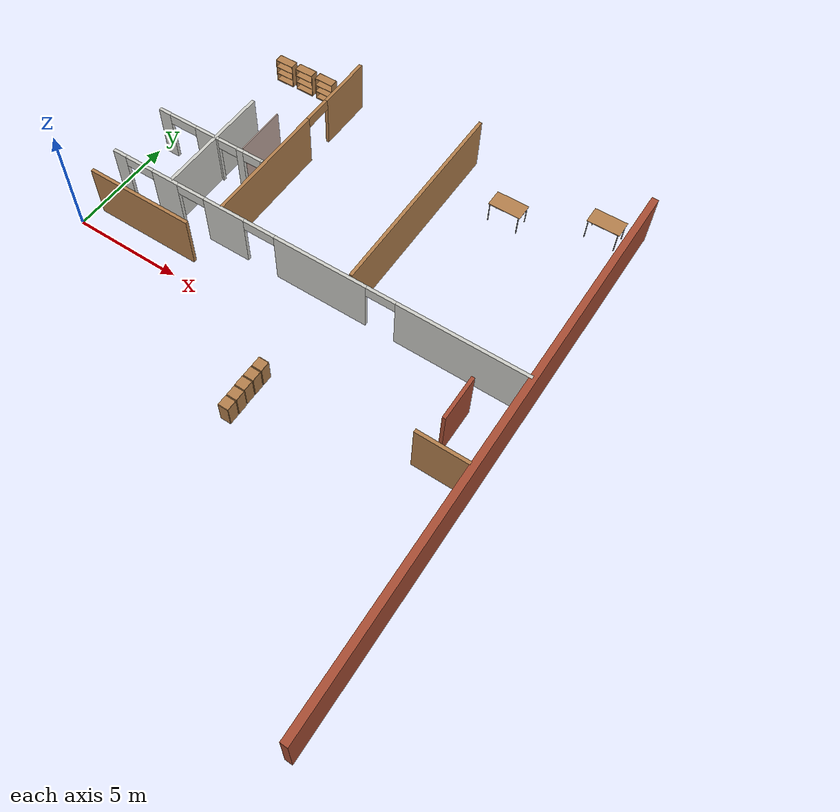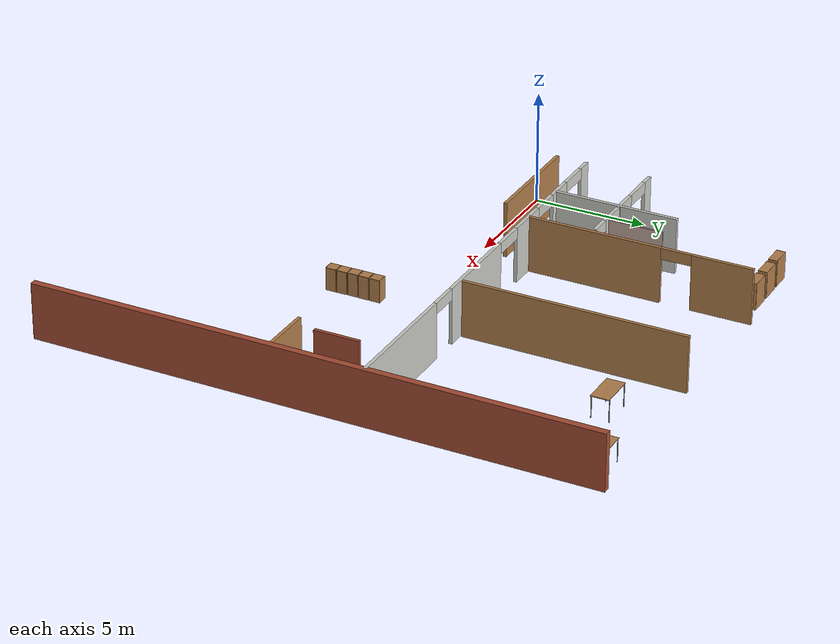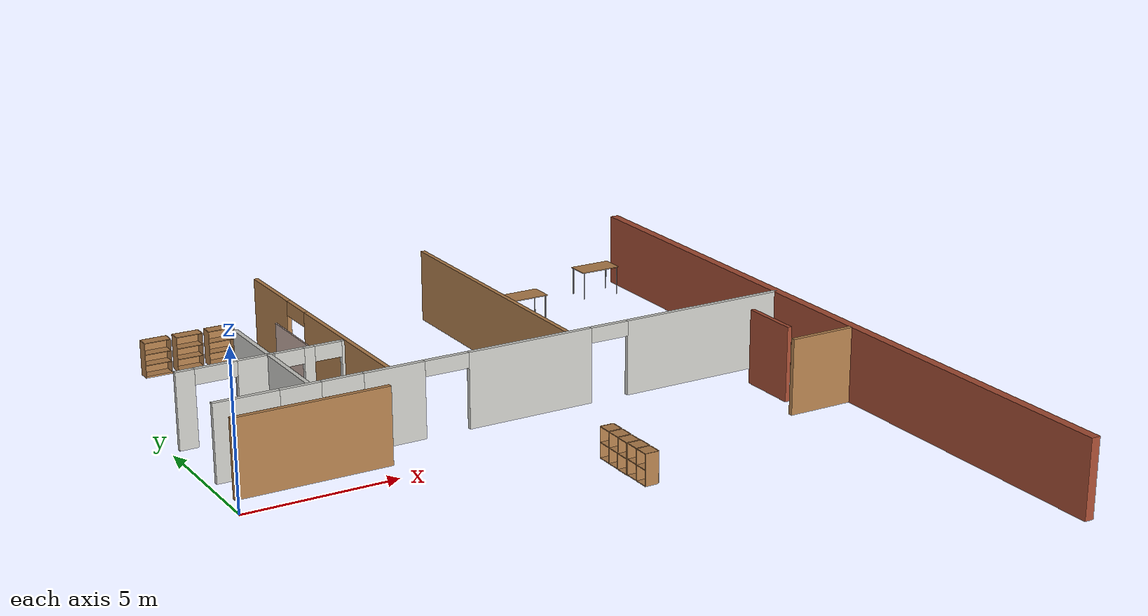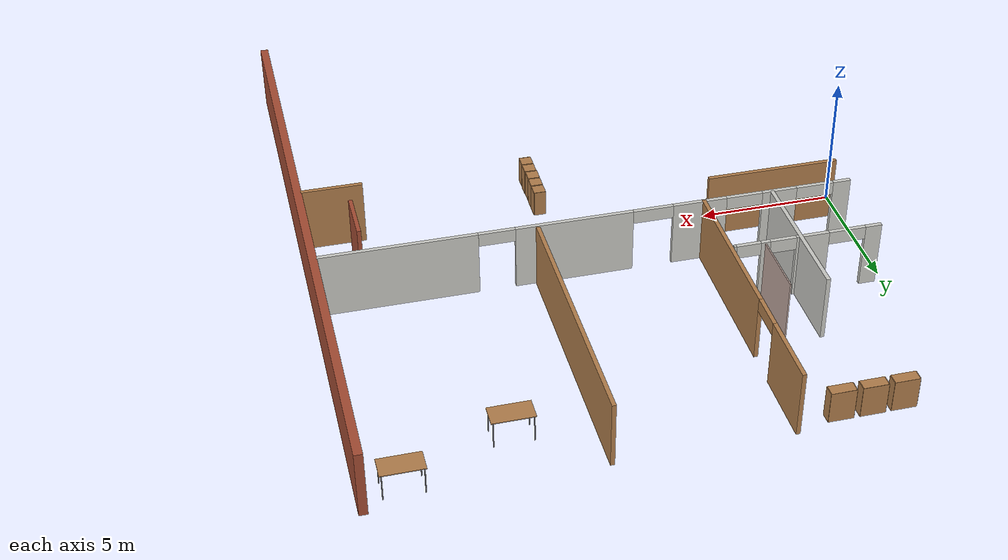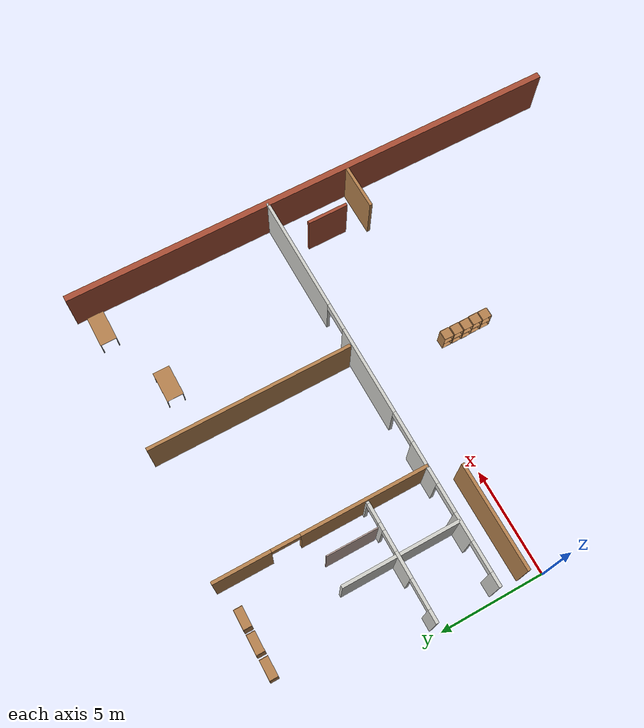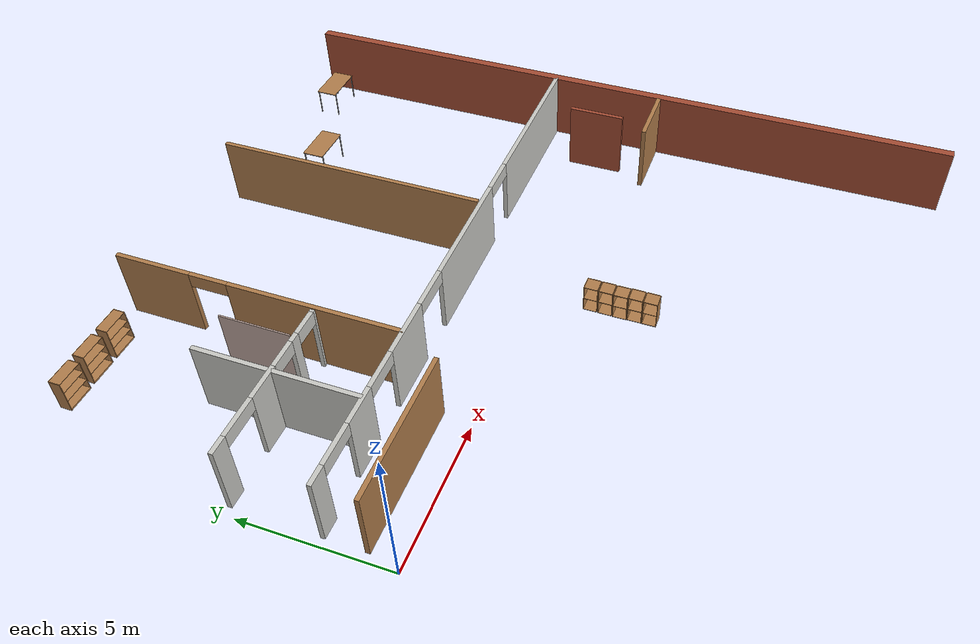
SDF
<sdf version="1.6">
 <world name="default">
  <model name="Building">
   <pose>-0.890597 0.014931 0 0 -0 0</pose>
   <link name="Wall_19">
    <collision name="Wall_19_Collision">
     <geometry><box><size>24.9915 0.3 2.5</size></box></geometry>
     <pose>0 0 1.25 0 -0 0</pose>
    </collision>
    <visual name="Wall_19_Visual">
     <pose>0 0 1.25 0 -0 0</pose>
     <geometry><box><size>24.9915 0.3 2.5</size></box></geometry>
     <material>
      <script><uri>file://media/materials/scripts/gazebo.material</uri><name>Gazebo/Bricks</name></script>
      <ambient>1 1 1 1</ambient>
     </material>
     <meta><layer>0</layer></meta>
    </visual>
    <pose>20.9406 0.012499 0 0 0 -1.57201</pose>
   </link>
   <link name="Wall_77">
    <pose>11.0476 2.39664 0 0 -0 0</pose>
    <visual name="Wall_77_Visual_0">
     <pose>-9.53901 0 1.25 0 -0 0</pose>
     <geometry><box><size>0.671981 0.15 2.5</size></box></geometry>
     <material>
      <script><uri>file://media/materials/scripts/gazebo.material</uri><name>Gazebo/CeilingTiled</name></script>
      <ambient>0.921569 0.807843 0.615686 1</ambient>
     </material>
     <meta><layer>0</layer></meta>
    </visual>
    <collision name="Wall_77_Collision_0">
     <geometry><box><size>0.671981 0.15 2.5</size></box></geometry>
     <pose>-9.53901 0 1.25 0 -0 0</pose>
    </collision>
    <visual name="Wall_77_Visual_1">
     <pose>-7.12805 0 1.25 0 -0 0</pose>
     <geometry><box><size>1.31821 0.15 2.5</size></box></geometry>
     <material>
      <script><uri>file://media/materials/scripts/gazebo.material</uri><name>Gazebo/CeilingTiled</name></script>
      <ambient>0.921569 0.807843 0.615686 1</ambient>
     </material>
     <meta><layer>0</layer></meta>
    </visual>
    <collision name="Wall_77_Collision_1">
     <geometry><box><size>1.31821 0.15 2.5</size></box></geometry>
     <pose>-7.12805 0 1.25 0 -0 0</pose>
    </collision>
    <visual name="Wall_77_Visual_2">
     <pose>-4.09575 0 1.25 0 -0 0</pose>
     <geometry><box><size>2.01783 0.15 2.5</size></box></geometry>
     <material>
      <script><uri>file://media/materials/scripts/gazebo.material</uri><name>Gazebo/CeilingTiled</name></script>
      <ambient>0.921569 0.807843 0.615686 1</ambient>
     </material>
     <meta><layer>0</layer></meta>
    </visual>
    <collision name="Wall_77_Collision_2">
     <geometry><box><size>2.01783 0.15 2.5</size></box></geometry>
     <pose>-4.09575 0 1.25 0 -0 0</pose>
    </collision>
    <visual name="Wall_77_Visual_3">
     <pose>0.576423 0 1.25 0 -0 0</pose>
     <geometry><box><size>4.33726 0.15 2.5</size></box></geometry>
     <material>
      <script><uri>file://media/materials/scripts/gazebo.material</uri><name>Gazebo/CeilingTiled</name></script>
      <ambient>0.921569 0.807843 0.615686 1</ambient>
     </material>
     <meta><layer>0</layer></meta>
    </visual>
    <collision name="Wall_77_Collision_3">
     <geometry><box><size>4.33726 0.15 2.5</size></box></geometry>
     <pose>0.576423 0 1.25 0 -0 0</pose>
    </collision>
    <visual name="Wall_77_Visual_4">
     <pose>6.97729 0 1.25 0 -0 0</pose>
     <geometry><box><size>5.79542 0.15 2.5</size></box></geometry>
     <material>
      <script><uri>file://media/materials/scripts/gazebo.material</uri><name>Gazebo/CeilingTiled</name></script>
      <ambient>0.921569 0.807843 0.615686 1</ambient>
     </material>
     <meta><layer>0</layer></meta>
    </visual>
    <collision name="Wall_77_Collision_4">
     <geometry><box><size>5.79542 0.15 2.5</size></box></geometry>
     <pose>6.97729 0 1.25 0 -0 0</pose>
    </collision>
    <visual name="Wall_77_Visual_5">
     <pose>-8.49509 0 2.25 0 -0 0</pose>
     <geometry><box><size>1.41586 0.15 0.5</size></box></geometry>
     <material>
      <script><uri>file://media/materials/scripts/gazebo.material</uri><name>Gazebo/CeilingTiled</name></script>
      <ambient>0.921569 0.807843 0.615686 1</ambient>
     </material>
     <meta><layer>0</layer></meta>
    </visual>
    <collision name="Wall_77_Collision_5">
     <geometry><box><size>1.41586 0.15 0.5</size></box></geometry>
     <pose>-8.49509 0 2.25 0 -0 0</pose>
    </collision>
    <visual name="Wall_77_Visual_6">
     <pose>-5.7868 0 2.25 0 -0 0</pose>
     <geometry><box><size>1.36428 0.15 0.5</size></box></geometry>
     <material>
      <script><uri>file://media/materials/scripts/gazebo.material</uri><name>Gazebo/CeilingTiled</name></script>
      <ambient>0.921569 0.807843 0.615686 1</ambient>
     </material>
     <meta><layer>0</layer></meta>
    </visual>
    <collision name="Wall_77_Collision_6">
     <geometry><box><size>1.36428 0.15 0.5</size></box></geometry>
     <pose>-5.7868 0 2.25 0 -0 0</pose>
    </collision>
    <visual name="Wall_77_Visual_7">
     <pose>-2.33952 0 2.25 0 -0 0</pose>
     <geometry><box><size>1.49462 0.15 0.5</size></box></geometry>
     <material>
      <script><uri>file://media/materials/scripts/gazebo.material</uri><name>Gazebo/CeilingTiled</name></script>
      <ambient>0.921569 0.807843 0.615686 1</ambient>
     </material>
     <meta><layer>0</layer></meta>
    </visual>
    <collision name="Wall_77_Collision_7">
     <geometry><box><size>1.49462 0.15 0.5</size></box></geometry>
     <pose>-2.33952 0 2.25 0 -0 0</pose>
    </collision>
    <visual name="Wall_77_Visual_8">
     <pose>3.41232 0 2.25 0 -0 0</pose>
     <geometry><box><size>1.33453 0.15 0.5</size></box></geometry>
     <material>
      <script><uri>file://media/materials/scripts/gazebo.material</uri><name>Gazebo/CeilingTiled</name></script>
      <ambient>0.921569 0.807843 0.615686 1</ambient>
     </material>
     <meta><layer>0</layer></meta>
    </visual>
    <collision name="Wall_77_Collision_8">
     <geometry><box><size>1.33453 0.15 0.5</size></box></geometry>
     <pose>3.41232 0 2.25 0 -0 0</pose>
    </collision>
   </link>
   <link name="Wall_80">
    <pose>6.79105 7.35843 0 0 0 -1.5708</pose>
    <visual name="Wall_80_Visual_0">
     <pose>-3.66248 0 1.25 0 -0 0</pose>
     <geometry><box><size>2.67504 0.15 2.5</size></box></geometry>
     <material>
      <script><uri>file://media/materials/scripts/gazebo.material</uri><name>Gazebo/Wood</name></script>
      <ambient>1 1 1 1</ambient>
     </material>
     <meta><layer>0</layer></meta>
    </visual>
    <collision name="Wall_80_Collision_0">
     <geometry><box><size>2.67504 0.15 2.5</size></box></geometry>
     <pose>-3.66248 0 1.25 0 -0 0</pose>
    </collision>
    <visual name="Wall_80_Visual_1">
     <pose>2.00479 0 1.25 0 -0 0</pose>
     <geometry><box><size>5.99042 0.15 2.5</size></box></geometry>
     <material>
      <script><uri>file://media/materials/scripts/gazebo.material</uri><name>Gazebo/Wood</name></script>
      <ambient>1 1 1 1</ambient>
     </material>
     <meta><layer>0</layer></meta>
    </visual>
    <collision name="Wall_80_Collision_1">
     <geometry><box><size>5.99042 0.15 2.5</size></box></geometry>
     <pose>2.00479 0 1.25 0 -0 0</pose>
    </collision>
    <visual name="Wall_80_Visual_2">
     <pose>-1.65769 0 2.25 0 -0 0</pose>
     <geometry><box><size>1.33453 0.15 0.5</size></box></geometry>
     <material>
      <script><uri>file://media/materials/scripts/gazebo.material</uri><name>Gazebo/Wood</name></script>
      <ambient>1 1 1 1</ambient>
     </material>
     <meta><layer>0</layer></meta>
    </visual>
    <collision name="Wall_80_Collision_2">
     <geometry><box><size>1.33453 0.15 0.5</size></box></geometry>
     <pose>-1.65769 0 2.25 0 -0 0</pose>
    </collision>
   </link>
   <link name="Wall_84">
    <collision name="Wall_84_Collision">
     <geometry><box><size>5.5 0.15 2.5</size></box></geometry>
     <pose>0 0 1.25 0 -0 0</pose>
    </collision>
    <visual name="Wall_84_Visual">
     <pose>0 0 1.25 0 -0 0</pose>
     <geometry><box><size>5.5 0.15 2.5</size></box></geometry>
     <material>
      <script><uri>file://media/materials/scripts/gazebo.material</uri><name>Gazebo/CeilingTiled</name></script>
      <ambient>1 1 1 1</ambient>
     </material>
     <meta><layer>0</layer></meta>
    </visual>
    <pose>4.2046 5.15734 0 0 0 -1.5708</pose>
   </link>
   <link name="Wall_86">
    <pose>3.93226 5.30604 0 0 -0 0</pose>
    <visual name="Wall_86_Visual_0">
     <pose>-2.44464 0 1.25 0 -0 0</pose>
     <geometry><box><size>0.610725 0.15 2.5</size></box></geometry>
     <material>
      <script><uri>file://media/materials/scripts/gazebo.material</uri><name>Gazebo/CeilingTiled</name></script>
      <ambient>1 1 1 1</ambient>
     </material>
     <meta><layer>0</layer></meta>
    </visual>
    <collision name="Wall_86_Collision_0">
     <geometry><box><size>0.610725 0.15 2.5</size></box></geometry>
     <pose>-2.44464 0 1.25 0 -0 0</pose>
    </collision>
    <visual name="Wall_86_Visual_1">
     <pose>-0.167477 0 1.25 0 -0 0</pose>
     <geometry><box><size>1.21504 0.15 2.5</size></box></geometry>
     <material>
      <script><uri>file://media/materials/scripts/gazebo.material</uri><name>Gazebo/CeilingTiled</name></script>
      <ambient>1 1 1 1</ambient>
     </material>
     <meta><layer>0</layer></meta>
    </visual>
    <collision name="Wall_86_Collision_1">
     <geometry><box><size>1.21504 0.15 2.5</size></box></geometry>
     <pose>-0.167477 0 1.25 0 -0 0</pose>
    </collision>
    <visual name="Wall_86_Visual_2">
     <pose>1.58216 0 1.25 0 -0 0</pose>
     <geometry><box><size>0.34667 0.15 2.5</size></box></geometry>
     <material>
      <script><uri>file://media/materials/scripts/gazebo.material</uri><name>Gazebo/CeilingTiled</name></script>
      <ambient>1 1 1 1</ambient>
     </material>
     <meta><layer>0</layer></meta>
    </visual>
    <collision name="Wall_86_Collision_2">
     <geometry><box><size>0.34667 0.15 2.5</size></box></geometry>
     <pose>1.58216 0 1.25 0 -0 0</pose>
    </collision>
    <visual name="Wall_86_Visual_3">
     <pose>2.70275 0 1.25 0 -0 0</pose>
     <geometry><box><size>0.094504 0.15 2.5</size></box></geometry>
     <material>
      <script><uri>file://media/materials/scripts/gazebo.material</uri><name>Gazebo/CeilingTiled</name></script>
      <ambient>1 1 1 1</ambient>
     </material>
     <meta><layer>0</layer></meta>
    </visual>
    <collision name="Wall_86_Collision_3">
     <geometry><box><size>0.094504 0.15 2.5</size></box></geometry>
     <pose>2.70275 0 1.25 0 -0 0</pose>
    </collision>
    <visual name="Wall_86_Visual_4">
     <pose>-1.45714 0 2.25 0 -0 0</pose>
     <geometry><box><size>1.36428 0.15 0.5</size></box></geometry>
     <material>
      <script><uri>file://media/materials/scripts/gazebo.material</uri><name>Gazebo/CeilingTiled</name></script>
      <ambient>1 1 1 1</ambient>
     </material>
     <meta><layer>0</layer></meta>
    </visual>
    <collision name="Wall_86_Collision_4">
     <geometry><box><size>1.36428 0.15 0.5</size></box></geometry>
     <pose>-1.45714 0 2.25 0 -0 0</pose>
    </collision>
    <visual name="Wall_86_Visual_5">
     <pose>0.924435 0 2.25 0 -0 0</pose>
     <geometry><box><size>0.968782 0.15 0.5</size></box></geometry>
     <material>
      <script><uri>file://media/materials/scripts/gazebo.material</uri><name>Gazebo/CeilingTiled</name></script>
      <ambient>1 1 1 1</ambient>
     </material>
     <meta><layer>0</layer></meta>
    </visual>
    <collision name="Wall_86_Collision_5">
     <geometry><box><size>0.968782 0.15 0.5</size></box></geometry>
     <pose>0.924435 0 2.25 0 -0 0</pose>
    </collision>
    <visual name="Wall_86_Visual_6">
     <pose>2.2055 0 2.25 0 -0 0</pose>
     <geometry><box><size>0.9 0.15 0.5</size></box></geometry>
     <material>
      <script><uri>file://media/materials/scripts/gazebo.material</uri><name>Gazebo/CeilingTiled</name></script>
      <ambient>1 1 1 1</ambient>
     </material>
     <meta><layer>0</layer></meta>
    </visual>
    <collision name="Wall_86_Collision_6">
     <geometry><box><size>0.9 0.15 0.5</size></box></geometry>
     <pose>2.2055 0 2.25 0 -0 0</pose>
    </collision>
   </link>
   <link name="Wall_89">
    <collision name="Wall_89_Collision">
     <geometry><box><size>5 0.15 2.5</size></box></geometry>
     <pose>0 0 1.25 0 -0 0</pose>
    </collision>
    <visual name="Wall_89_Visual">
     <pose>0 0 1.25 0 -0 0</pose>
     <geometry><box><size>5 0.15 2.5</size></box></geometry>
     <material>
      <script><uri>file://media/materials/scripts/gazebo.material</uri><name>Gazebo/Wood</name></script>
      <ambient>1 1 1 1</ambient>
     </material>
     <meta><layer>0</layer></meta>
    </visual>
    <pose>3.67259 1.04664 0 0 -0 0</pose>
   </link>
   <link name="Wall_91">
    <collision name="Wall_91_Collision">
     <geometry><box><size>2.25 0.15 2.5</size></box></geometry>
     <pose>0 0 1.25 0 -0 0</pose>
    </collision>
    <visual name="Wall_91_Visual">
     <pose>0 0 1.25 0 -0 0</pose>
     <geometry><box><size>2.25 0.15 2.5</size></box></geometry>
     <material>
      <script><uri>file://media/materials/scripts/gazebo.material</uri><name>Gazebo/Wood</name></script>
      <ambient>1 1 1 1</ambient>
     </material>
     <meta><layer>0</layer></meta>
    </visual>
    <pose>19.6906 -1.7315 0 0 -0 0</pose>
   </link>
   <link name="Wall_93">
    <collision name="Wall_93_Collision">
     <geometry><box><size>2 0.15 2.5</size></box></geometry>
     <pose>0 0 1.25 0 -0 0</pose>
    </collision>
    <visual name="Wall_93_Visual">
     <pose>0 0 1.25 0 -0 0</pose>
     <geometry><box><size>2 0.15 2.5</size></box></geometry>
     <material>
      <script><uri>file://media/materials/scripts/gazebo.material</uri><name>Gazebo/Bricks</name></script>
      <ambient>1 1 1 1</ambient>
     </material>
     <meta><layer>0</layer></meta>
    </visual>
    <pose>19.1519 0.230697 0 0 0 -1.5708</pose>
   </link>
   <link name="Wall_95">
    <collision name="Wall_95_Collision">
     <geometry><box><size>9.75 0.15 2.5</size></box></geometry>
     <pose>0 0 1.25 0 -0 0</pose>
    </collision>
    <visual name="Wall_95_Visual">
     <pose>0 0 1.25 0 -0 0</pose>
     <geometry><box><size>9.75 0.15 2.5</size></box></geometry>
     <material>
      <script><uri>file://media/materials/scripts/gazebo.material</uri><name>Gazebo/Wood</name></script>
      <ambient>1 1 1 1</ambient>
     </material>
     <meta><layer>0</layer></meta>
    </visual>
    <pose>12.9865 7.39321 0 0 0 -1.5708</pose>
   </link>
   <link name="Wall_97">
    <collision name="Wall_97_Collision">
     <geometry><box><size>2.39986 0.05 2.5</size></box></geometry>
     <pose>0 0 1.25 0 -0 0</pose>
    </collision>
    <visual name="Wall_97_Visual">
     <pose>0 0 1.25 0 -0 0</pose>
     <geometry><box><size>2.39986 0.05 2.5</size></box></geometry>
     <material>
      <script><uri>file://media/materials/scripts/gazebo.material</uri><name>Gazebo/Grey</name></script>
      <ambient>0.760784 0.662745 0.627451 1</ambient>
     </material>
     <meta><layer>0</layer></meta>
    </visual>
    <pose>5.54862 6.64876 0 0 0 -1.5708</pose>
   </link>
   <static>1</static>
  </model>
  <model name="cabinet_0_clone_clone_clone_clone_clone_clone_clone_clone">
   <static>1</static>
   <link name="cabinet_bottom_plate">
    <inertial>
     <pose>0 0 -1 0 -0 0</pose>
     <inertia><ixx>2.05</ixx><ixy>0</ixy><ixz>0</ixz><iyy>2.05</iyy><iyz>0</iyz><izz>2.05</izz></inertia>
     <mass>25</mass>
    </inertial>
    <collision name="cabinet_bottom_plate_geom">
     <pose>0 0 0.01 0 -0 0</pose>
     <geometry><box><size>0.45 0.45 0.02</size></box></geometry>
    </collision>
    <visual name="cabinet_bottom_plate_geom_visual">
     <pose>0 0 0.01 0 -0 0</pose>
     <geometry><box><size>0.45 0.45 0.02</size></box></geometry>
     <material>
      <script><uri>file://media/materials/scripts/gazebo.material</uri><name>Gazebo/Wood</name></script>
     </material>
    </visual>
    <collision name="cabinet_bottom_plate_geom_cabinet_back_plate">
     <pose>0.235 0 0.51 0 -0 0</pose>
     <geometry><box><size>0.02 0.45 1.02</size></box></geometry>
    </collision>
    <visual name="cabinet_bottom_plate_geom_cabinet_back_plate_visual">
     <pose>0.235 0 0.51 0 -0 0</pose>
     <geometry><box><size>0.02 0.45 1.02</size></box></geometry>
     <material>
      <script><uri>file://media/materials/scripts/gazebo.material</uri><name>Gazebo/Wood</name></script>
     </material>
    </visual>
    <collision name="cabinet_bottom_plate_geom_cabinet_left_plate">
     <pose>0 0.235 0.51 0 -0 0</pose>
     <geometry><box><size>0.45 0.02 1.02</size></box></geometry>
    </collision>
    <visual name="cabinet_bottom_plate_geom_cabinet_left_plate_visual">
     <pose>0 0.235 0.51 0 -0 0</pose>
     <geometry><box><size>0.45 0.02 1.02</size></box></geometry>
     <material>
      <script><uri>file://media/materials/scripts/gazebo.material</uri><name>Gazebo/Wood</name></script>
     </material>
    </visual>
    <collision name="cabinet_bottom_plate_geom_cabinet_middle_plate">
     <pose>0 0 0.51 0 -0 0</pose>
     <geometry><box><size>0.45 0.45 0.02</size></box></geometry>
    </collision>
    <visual name="cabinet_bottom_plate_geom_cabinet_middle_plate_visual">
     <pose>0 0 0.51 0 -0 0</pose>
     <geometry><box><size>0.45 0.45 0.02</size></box></geometry>
     <material>
      <script><uri>file://media/materials/scripts/gazebo.material</uri><name>Gazebo/Wood</name></script>
     </material>
    </visual>
    <collision name="cabinet_bottom_plate_geom_cabinet_right_plate">
     <pose>0 -0.235 0.51 0 -0 0</pose>
     <geometry><box><size>0.45 0.02 1.02</size></box></geometry>
    </collision>
    <visual name="cabinet_bottom_plate_geom_cabinet_right_plate_visual">
     <pose>0 -0.235 0.51 0 -0 0</pose>
     <geometry><box><size>0.45 0.02 1.02</size></box></geometry>
     <material>
      <script><uri>file://media/materials/scripts/gazebo.material</uri><name>Gazebo/Wood</name></script>
     </material>
    </visual>
    <collision name="cabinet_bottom_plate_geom_cabinet_top_plate">
     <pose>0 0 1.01 0 -0 0</pose>
     <geometry><box><size>0.45 0.45 0.02</size></box></geometry>
    </collision>
    <visual name="cabinet_bottom_plate_geom_cabinet_top_plate_visual">
     <pose>0 0 1.01 0 -0 0</pose>
     <geometry><box><size>0.45 0.45 0.02</size></box></geometry>
     <material>
      <script><uri>file://media/materials/scripts/gazebo.material</uri><name>Gazebo/Wood</name></script>
     </material>
    </visual>
   </link>
   <pose>10.9895 -3.90962 0 0 -0 0</pose>
  </model>
  <model name="cabinet_0_clone_clone_clone_clone_clone_clone_clone_clone_clone">
   <static>1</static>
   <link name="cabinet_bottom_plate">
    <inertial>
     <pose>0 0 -1 0 -0 0</pose>
     <inertia><ixx>2.05</ixx><ixy>0</ixy><ixz>0</ixz><iyy>2.05</iyy><iyz>0</iyz><izz>2.05</izz></inertia>
     <mass>25</mass>
    </inertial>
    <collision name="cabinet_bottom_plate_geom">
     <pose>0 0 0.01 0 -0 0</pose>
     <geometry><box><size>0.45 0.45 0.02</size></box></geometry>
    </collision>
    <visual name="cabinet_bottom_plate_geom_visual">
     <pose>0 0 0.01 0 -0 0</pose>
     <geometry><box><size>0.45 0.45 0.02</size></box></geometry>
     <material>
      <script><uri>file://media/materials/scripts/gazebo.material</uri><name>Gazebo/Wood</name></script>
     </material>
    </visual>
    <collision name="cabinet_bottom_plate_geom_cabinet_back_plate">
     <pose>0.235 0 0.51 0 -0 0</pose>
     <geometry><box><size>0.02 0.45 1.02</size></box></geometry>
    </collision>
    <visual name="cabinet_bottom_plate_geom_cabinet_back_plate_visual">
     <pose>0.235 0 0.51 0 -0 0</pose>
     <geometry><box><size>0.02 0.45 1.02</size></box></geometry>
     <material>
      <script><uri>file://media/materials/scripts/gazebo.material</uri><name>Gazebo/Wood</name></script>
     </material>
    </visual>
    <collision name="cabinet_bottom_plate_geom_cabinet_left_plate">
     <pose>0 0.235 0.51 0 -0 0</pose>
     <geometry><box><size>0.45 0.02 1.02</size></box></geometry>
    </collision>
    <visual name="cabinet_bottom_plate_geom_cabinet_left_plate_visual">
     <pose>0 0.235 0.51 0 -0 0</pose>
     <geometry><box><size>0.45 0.02 1.02</size></box></geometry>
     <material>
      <script><uri>file://media/materials/scripts/gazebo.material</uri><name>Gazebo/Wood</name></script>
     </material>
    </visual>
    <collision name="cabinet_bottom_plate_geom_cabinet_middle_plate">
     <pose>0 0 0.51 0 -0 0</pose>
     <geometry><box><size>0.45 0.45 0.02</size></box></geometry>
    </collision>
    <visual name="cabinet_bottom_plate_geom_cabinet_middle_plate_visual">
     <pose>0 0 0.51 0 -0 0</pose>
     <geometry><box><size>0.45 0.45 0.02</size></box></geometry>
     <material>
      <script><uri>file://media/materials/scripts/gazebo.material</uri><name>Gazebo/Wood</name></script>
     </material>
    </visual>
    <collision name="cabinet_bottom_plate_geom_cabinet_right_plate">
     <pose>0 -0.235 0.51 0 -0 0</pose>
     <geometry><box><size>0.45 0.02 1.02</size></box></geometry>
    </collision>
    <visual name="cabinet_bottom_plate_geom_cabinet_right_plate_visual">
     <pose>0 -0.235 0.51 0 -0 0</pose>
     <geometry><box><size>0.45 0.02 1.02</size></box></geometry>
     <material>
      <script><uri>file://media/materials/scripts/gazebo.material</uri><name>Gazebo/Wood</name></script>
     </material>
    </visual>
    <collision name="cabinet_bottom_plate_geom_cabinet_top_plate">
     <pose>0 0 1.01 0 -0 0</pose>
     <geometry><box><size>0.45 0.45 0.02</size></box></geometry>
    </collision>
    <visual name="cabinet_bottom_plate_geom_cabinet_top_plate_visual">
     <pose>0 0 1.01 0 -0 0</pose>
     <geometry><box><size>0.45 0.45 0.02</size></box></geometry>
     <material>
      <script><uri>file://media/materials/scripts/gazebo.material</uri><name>Gazebo/Wood</name></script>
     </material>
    </visual>
   </link>
   <pose>10.9941 -3.40797 0 0 -0 0</pose>
  </model>
  <model name="cabinet_0_clone_clone_clone_clone_clone_clone_clone_clone_clone_clone">
   <static>1</static>
   <link name="cabinet_bottom_plate">
    <inertial>
     <pose>0 0 -1 0 -0 0</pose>
     <inertia><ixx>2.05</ixx><ixy>0</ixy><ixz>0</ixz><iyy>2.05</iyy><iyz>0</iyz><izz>2.05</izz></inertia>
     <mass>25</mass>
    </inertial>
    <collision name="cabinet_bottom_plate_geom">
     <pose>0 0 0.01 0 -0 0</pose>
     <geometry><box><size>0.45 0.45 0.02</size></box></geometry>
    </collision>
    <visual name="cabinet_bottom_plate_geom_visual">
     <pose>0 0 0.01 0 -0 0</pose>
     <geometry><box><size>0.45 0.45 0.02</size></box></geometry>
     <material>
      <script><uri>file://media/materials/scripts/gazebo.material</uri><name>Gazebo/Wood</name></script>
     </material>
    </visual>
    <collision name="cabinet_bottom_plate_geom_cabinet_back_plate">
     <pose>0.235 0 0.51 0 -0 0</pose>
     <geometry><box><size>0.02 0.45 1.02</size></box></geometry>
    </collision>
    <visual name="cabinet_bottom_plate_geom_cabinet_back_plate_visual">
     <pose>0.235 0 0.51 0 -0 0</pose>
     <geometry><box><size>0.02 0.45 1.02</size></box></geometry>
     <material>
      <script><uri>file://media/materials/scripts/gazebo.material</uri><name>Gazebo/Wood</name></script>
     </material>
    </visual>
    <collision name="cabinet_bottom_plate_geom_cabinet_left_plate">
     <pose>0 0.235 0.51 0 -0 0</pose>
     <geometry><box><size>0.45 0.02 1.02</size></box></geometry>
    </collision>
    <visual name="cabinet_bottom_plate_geom_cabinet_left_plate_visual">
     <pose>0 0.235 0.51 0 -0 0</pose>
     <geometry><box><size>0.45 0.02 1.02</size></box></geometry>
     <material>
      <script><uri>file://media/materials/scripts/gazebo.material</uri><name>Gazebo/Wood</name></script>
     </material>
    </visual>
    <collision name="cabinet_bottom_plate_geom_cabinet_middle_plate">
     <pose>0 0 0.51 0 -0 0</pose>
     <geometry><box><size>0.45 0.45 0.02</size></box></geometry>
    </collision>
    <visual name="cabinet_bottom_plate_geom_cabinet_middle_plate_visual">
     <pose>0 0 0.51 0 -0 0</pose>
     <geometry><box><size>0.45 0.45 0.02</size></box></geometry>
     <material>
      <script><uri>file://media/materials/scripts/gazebo.material</uri><name>Gazebo/Wood</name></script>
     </material>
    </visual>
    <collision name="cabinet_bottom_plate_geom_cabinet_right_plate">
     <pose>0 -0.235 0.51 0 -0 0</pose>
     <geometry><box><size>0.45 0.02 1.02</size></box></geometry>
    </collision>
    <visual name="cabinet_bottom_plate_geom_cabinet_right_plate_visual">
     <pose>0 -0.235 0.51 0 -0 0</pose>
     <geometry><box><size>0.45 0.02 1.02</size></box></geometry>
     <material>
      <script><uri>file://media/materials/scripts/gazebo.material</uri><name>Gazebo/Wood</name></script>
     </material>
    </visual>
    <collision name="cabinet_bottom_plate_geom_cabinet_top_plate">
     <pose>0 0 1.01 0 -0 0</pose>
     <geometry><box><size>0.45 0.45 0.02</size></box></geometry>
    </collision>
    <visual name="cabinet_bottom_plate_geom_cabinet_top_plate_visual">
     <pose>0 0 1.01 0 -0 0</pose>
     <geometry><box><size>0.45 0.45 0.02</size></box></geometry>
     <material>
      <script><uri>file://media/materials/scripts/gazebo.material</uri><name>Gazebo/Wood</name></script>
     </material>
    </visual>
   </link>
   <pose>10.9779 -2.90765 0 0 -0 0</pose>
  </model>
  <model name="cabinet_0_clone_clone_clone_clone_clone_clone_clone_clone_clone_clone_clone">
   <static>1</static>
   <link name="cabinet_bottom_plate">
    <inertial>
     <pose>0 0 -1 0 -0 0</pose>
     <inertia><ixx>2.05</ixx><ixy>0</ixy><ixz>0</ixz><iyy>2.05</iyy><iyz>0</iyz><izz>2.05</izz></inertia>
     <mass>25</mass>
    </inertial>
    <collision name="cabinet_bottom_plate_geom">
     <pose>0 0 0.01 0 -0 0</pose>
     <geometry><box><size>0.45 0.45 0.02</size></box></geometry>
    </collision>
    <visual name="cabinet_bottom_plate_geom_visual">
     <pose>0 0 0.01 0 -0 0</pose>
     <geometry><box><size>0.45 0.45 0.02</size></box></geometry>
     <material>
      <script><uri>file://media/materials/scripts/gazebo.material</uri><name>Gazebo/Wood</name></script>
     </material>
    </visual>
    <collision name="cabinet_bottom_plate_geom_cabinet_back_plate">
     <pose>0.235 0 0.51 0 -0 0</pose>
     <geometry><box><size>0.02 0.45 1.02</size></box></geometry>
    </collision>
    <visual name="cabinet_bottom_plate_geom_cabinet_back_plate_visual">
     <pose>0.235 0 0.51 0 -0 0</pose>
     <geometry><box><size>0.02 0.45 1.02</size></box></geometry>
     <material>
      <script><uri>file://media/materials/scripts/gazebo.material</uri><name>Gazebo/Wood</name></script>
     </material>
    </visual>
    <collision name="cabinet_bottom_plate_geom_cabinet_left_plate">
     <pose>0 0.235 0.51 0 -0 0</pose>
     <geometry><box><size>0.45 0.02 1.02</size></box></geometry>
    </collision>
    <visual name="cabinet_bottom_plate_geom_cabinet_left_plate_visual">
     <pose>0 0.235 0.51 0 -0 0</pose>
     <geometry><box><size>0.45 0.02 1.02</size></box></geometry>
     <material>
      <script><uri>file://media/materials/scripts/gazebo.material</uri><name>Gazebo/Wood</name></script>
     </material>
    </visual>
    <collision name="cabinet_bottom_plate_geom_cabinet_middle_plate">
     <pose>0 0 0.51 0 -0 0</pose>
     <geometry><box><size>0.45 0.45 0.02</size></box></geometry>
    </collision>
    <visual name="cabinet_bottom_plate_geom_cabinet_middle_plate_visual">
     <pose>0 0 0.51 0 -0 0</pose>
     <geometry><box><size>0.45 0.45 0.02</size></box></geometry>
     <material>
      <script><uri>file://media/materials/scripts/gazebo.material</uri><name>Gazebo/Wood</name></script>
     </material>
    </visual>
    <collision name="cabinet_bottom_plate_geom_cabinet_right_plate">
     <pose>0 -0.235 0.51 0 -0 0</pose>
     <geometry><box><size>0.45 0.02 1.02</size></box></geometry>
    </collision>
    <visual name="cabinet_bottom_plate_geom_cabinet_right_plate_visual">
     <pose>0 -0.235 0.51 0 -0 0</pose>
     <geometry><box><size>0.45 0.02 1.02</size></box></geometry>
     <material>
      <script><uri>file://media/materials/scripts/gazebo.material</uri><name>Gazebo/Wood</name></script>
     </material>
    </visual>
    <collision name="cabinet_bottom_plate_geom_cabinet_top_plate">
     <pose>0 0 1.01 0 -0 0</pose>
     <geometry><box><size>0.45 0.45 0.02</size></box></geometry>
    </collision>
    <visual name="cabinet_bottom_plate_geom_cabinet_top_plate_visual">
     <pose>0 0 1.01 0 -0 0</pose>
     <geometry><box><size>0.45 0.45 0.02</size></box></geometry>
     <material>
      <script><uri>file://media/materials/scripts/gazebo.material</uri><name>Gazebo/Wood</name></script>
     </material>
    </visual>
   </link>
   <pose>10.9873 -2.40459 0 0 -0 0</pose>
  </model>
  <model name="cabinet_0_clone_clone_clone_clone_clone_clone_clone_clone_clone_clone_clone_clone">
   <static>1</static>
   <link name="cabinet_bottom_plate">
    <inertial>
     <pose>0 0 -1 0 -0 0</pose>
     <inertia><ixx>2.05</ixx><ixy>0</ixy><ixz>0</ixz><iyy>2.05</iyy><iyz>0</iyz><izz>2.05</izz></inertia>
     <mass>25</mass>
    </inertial>
    <collision name="cabinet_bottom_plate_geom">
     <pose>0 0 0.01 0 -0 0</pose>
     <geometry><box><size>0.45 0.45 0.02</size></box></geometry>
    </collision>
    <visual name="cabinet_bottom_plate_geom_visual">
     <pose>0 0 0.01 0 -0 0</pose>
     <geometry><box><size>0.45 0.45 0.02</size></box></geometry>
     <material>
      <script><uri>file://media/materials/scripts/gazebo.material</uri><name>Gazebo/Wood</name></script>
     </material>
    </visual>
    <collision name="cabinet_bottom_plate_geom_cabinet_back_plate">
     <pose>0.235 0 0.51 0 -0 0</pose>
     <geometry><box><size>0.02 0.45 1.02</size></box></geometry>
    </collision>
    <visual name="cabinet_bottom_plate_geom_cabinet_back_plate_visual">
     <pose>0.235 0 0.51 0 -0 0</pose>
     <geometry><box><size>0.02 0.45 1.02</size></box></geometry>
     <material>
      <script><uri>file://media/materials/scripts/gazebo.material</uri><name>Gazebo/Wood</name></script>
     </material>
    </visual>
    <collision name="cabinet_bottom_plate_geom_cabinet_left_plate">
     <pose>0 0.235 0.51 0 -0 0</pose>
     <geometry><box><size>0.45 0.02 1.02</size></box></geometry>
    </collision>
    <visual name="cabinet_bottom_plate_geom_cabinet_left_plate_visual">
     <pose>0 0.235 0.51 0 -0 0</pose>
     <geometry><box><size>0.45 0.02 1.02</size></box></geometry>
     <material>
      <script><uri>file://media/materials/scripts/gazebo.material</uri><name>Gazebo/Wood</name></script>
     </material>
    </visual>
    <collision name="cabinet_bottom_plate_geom_cabinet_middle_plate">
     <pose>0 0 0.51 0 -0 0</pose>
     <geometry><box><size>0.45 0.45 0.02</size></box></geometry>
    </collision>
    <visual name="cabinet_bottom_plate_geom_cabinet_middle_plate_visual">
     <pose>0 0 0.51 0 -0 0</pose>
     <geometry><box><size>0.45 0.45 0.02</size></box></geometry>
     <material>
      <script><uri>file://media/materials/scripts/gazebo.material</uri><name>Gazebo/Wood</name></script>
     </material>
    </visual>
    <collision name="cabinet_bottom_plate_geom_cabinet_right_plate">
     <pose>0 -0.235 0.51 0 -0 0</pose>
     <geometry><box><size>0.45 0.02 1.02</size></box></geometry>
    </collision>
    <visual name="cabinet_bottom_plate_geom_cabinet_right_plate_visual">
     <pose>0 -0.235 0.51 0 -0 0</pose>
     <geometry><box><size>0.45 0.02 1.02</size></box></geometry>
     <material>
      <script><uri>file://media/materials/scripts/gazebo.material</uri><name>Gazebo/Wood</name></script>
     </material>
    </visual>
    <collision name="cabinet_bottom_plate_geom_cabinet_top_plate">
     <pose>0 0 1.01 0 -0 0</pose>
     <geometry><box><size>0.45 0.45 0.02</size></box></geometry>
    </collision>
    <visual name="cabinet_bottom_plate_geom_cabinet_top_plate_visual">
     <pose>0 0 1.01 0 -0 0</pose>
     <geometry><box><size>0.45 0.45 0.02</size></box></geometry>
     <material>
      <script><uri>file://media/materials/scripts/gazebo.material</uri><name>Gazebo/Wood</name></script>
     </material>
    </visual>
   </link>
   <pose>10.9918 -1.89571 0 0 -0 0</pose>
  </model>
  <model name="table">
   <static>1</static>
   <link name="link">
    <collision name="surface">
     <pose>0 0 1 0 -0 0</pose>
     <geometry><box><size>1.5 0.8 0.03</size></box></geometry>
     <surface><friction><ode><mu>0.6</mu><mu2>0.6</mu2></ode></friction></surface>
    </collision>
    <visual name="visual1">
     <pose>0 0 1 0 -0 0</pose>
     <geometry><box><size>1.5 0.8 0.03</size></box></geometry>
     <material>
      <script><uri>file://media/materials/scripts/gazebo.material</uri><name>Gazebo/Wood</name></script>
     </material>
    </visual>
    <collision name="front_left_leg">
     <pose>0.68 0.38 0.5 0 -0 0</pose>
     <geometry><cylinder><radius>0.02</radius><length>1</length></cylinder></geometry>
    </collision>
    <visual name="front_left_leg">
     <pose>0.68 0.38 0.5 0 -0 0</pose>
     <geometry><cylinder><radius>0.02</radius><length>1</length></cylinder></geometry>
     <material>
      <script><uri>file://media/materials/scripts/gazebo.material</uri><name>Gazebo/Grey</name></script>
     </material>
    </visual>
    <collision name="front_right_leg">
     <pose>0.68 -0.38 0.5 0 -0 0</pose>
     <geometry><cylinder><radius>0.02</radius><length>1</length></cylinder></geometry>
    </collision>
    <visual name="front_right_leg">
     <pose>0.68 -0.38 0.5 0 -0 0</pose>
     <geometry><cylinder><radius>0.02</radius><length>1</length></cylinder></geometry>
     <material>
      <script><uri>file://media/materials/scripts/gazebo.material</uri><name>Gazebo/Grey</name></script>
     </material>
    </visual>
    <collision name="back_right_leg">
     <pose>-0.68 -0.38 0.5 0 -0 0</pose>
     <geometry><cylinder><radius>0.02</radius><length>1</length></cylinder></geometry>
    </collision>
    <visual name="back_right_leg">
     <pose>-0.68 -0.38 0.5 0 -0 0</pose>
     <geometry><cylinder><radius>0.02</radius><length>1</length></cylinder></geometry>
     <material>
      <script><uri>file://media/materials/scripts/gazebo.material</uri><name>Gazebo/Grey</name></script>
     </material>
    </visual>
    <collision name="back_left_leg">
     <pose>-0.68 0.38 0.5 0 -0 0</pose>
     <geometry><cylinder><radius>0.02</radius><length>1</length></cylinder></geometry>
    </collision>
    <visual name="back_left_leg">
     <pose>-0.68 0.38 0.5 0 -0 0</pose>
     <geometry><cylinder><radius>0.02</radius><length>1</length></cylinder></geometry>
     <material>
      <script><uri>file://media/materials/scripts/gazebo.material</uri><name>Gazebo/Grey</name></script>
     </material>
    </visual>
   </link>
   <pose>18.7035 11.6399 0 0 -0 0</pose>
  </model>
  <model name="bookshelf">
   <static>1</static>
   <link name="link">
    <inertial><mass>1</mass></inertial>
    <collision name="back">
     <pose>0 0.005 0.6 0 -0 0</pose>
     <geometry><box><size>0.9 0.01 1.2</size></box></geometry>
    </collision>
    <visual name="visual1">
     <pose>0 0.005 0.6 0 -0 0</pose>
     <geometry><box><size>0.9 0.01 1.2</size></box></geometry>
     <material>
      <script><uri>file://media/materials/scripts/gazebo.material</uri><name>Gazebo/Wood</name></script>
     </material>
    </visual>
    <collision name="left_side">
     <pose>0.45 -0.195 0.6 0 -0 0</pose>
     <geometry><box><size>0.02 0.4 1.2</size></box></geometry>
    </collision>
    <visual name="visual2">
     <pose>0.45 -0.195 0.6 0 -0 0</pose>
     <geometry><box><size>0.02 0.4 1.2</size></box></geometry>
     <material>
      <script><uri>file://media/materials/scripts/gazebo.material</uri><name>Gazebo/Wood</name></script>
     </material>
    </visual>
    <collision name="right_side">
     <pose>-0.45 -0.195 0.6 0 -0 0</pose>
     <geometry><box><size>0.02 0.4 1.2</size></box></geometry>
    </collision>
    <visual name="visual3">
     <pose>-0.45 -0.195 0.6 0 -0 0</pose>
     <geometry><box><size>0.02 0.4 1.2</size></box></geometry>
     <material>
      <script><uri>file://media/materials/scripts/gazebo.material</uri><name>Gazebo/Wood</name></script>
     </material>
    </visual>
    <collision name="bottom">
     <pose>0 -0.195 0.03 0 -0 0</pose>
     <geometry><box><size>0.88 0.4 0.06</size></box></geometry>
    </collision>
    <visual name="visual4">
     <pose>0 -0.195 0.03 0 -0 0</pose>
     <geometry><box><size>0.88 0.4 0.06</size></box></geometry>
     <material>
      <script><uri>file://media/materials/scripts/gazebo.material</uri><name>Gazebo/Wood</name></script>
     </material>
    </visual>
    <collision name="top">
     <pose>0 -0.195 1.19 0 -0 0</pose>
     <geometry><box><size>0.88 0.4 0.02</size></box></geometry>
    </collision>
    <visual name="visual5">
     <pose>0 -0.195 1.19 0 -0 0</pose>
     <geometry><box><size>0.88 0.4 0.02</size></box></geometry>
     <material>
      <script><uri>file://media/materials/scripts/gazebo.material</uri><name>Gazebo/Wood</name></script>
     </material>
    </visual>
    <collision name="low_shelf">
     <pose>0 -0.195 0.43 0 -0 0</pose>
     <geometry><box><size>0.88 0.4 0.02</size></box></geometry>
    </collision>
    <visual name="visual6">
     <pose>0 -0.195 0.43 0 -0 0</pose>
     <geometry><box><size>0.88 0.4 0.02</size></box></geometry>
     <material>
      <script><uri>file://media/materials/scripts/gazebo.material</uri><name>Gazebo/Wood</name></script>
     </material>
    </visual>
    <collision name="high_shelf">
     <pose>0 -0.195 0.8 0 -0 0</pose>
     <geometry><box><size>0.88 0.4 0.02</size></box></geometry>
    </collision>
    <visual name="visual7">
     <pose>0 -0.195 0.8 0 -0 0</pose>
     <geometry><box><size>0.88 0.4 0.02</size></box></geometry>
     <material>
      <script><uri>file://media/materials/scripts/gazebo.material</uri><name>Gazebo/Wood</name></script>
     </material>
    </visual>
   </link>
   <pose>2.08694 12.0606 0 0 -0 0</pose>
  </model>
  <model name="bookshelf_clone">
   <static>1</static>
   <link name="link">
    <inertial><mass>1</mass></inertial>
    <collision name="back">
     <pose>0 0.005 0.6 0 -0 0</pose>
     <geometry><box><size>0.9 0.01 1.2</size></box></geometry>
    </collision>
    <visual name="visual1">
     <pose>0 0.005 0.6 0 -0 0</pose>
     <geometry><box><size>0.9 0.01 1.2</size></box></geometry>
     <material>
      <script><uri>file://media/materials/scripts/gazebo.material</uri><name>Gazebo/Wood</name></script>
     </material>
    </visual>
    <collision name="left_side">
     <pose>0.45 -0.195 0.6 0 -0 0</pose>
     <geometry><box><size>0.02 0.4 1.2</size></box></geometry>
    </collision>
    <visual name="visual2">
     <pose>0.45 -0.195 0.6 0 -0 0</pose>
     <geometry><box><size>0.02 0.4 1.2</size></box></geometry>
     <material>
      <script><uri>file://media/materials/scripts/gazebo.material</uri><name>Gazebo/Wood</name></script>
     </material>
    </visual>
    <collision name="right_side">
     <pose>-0.45 -0.195 0.6 0 -0 0</pose>
     <geometry><box><size>0.02 0.4 1.2</size></box></geometry>
    </collision>
    <visual name="visual3">
     <pose>-0.45 -0.195 0.6 0 -0 0</pose>
     <geometry><box><size>0.02 0.4 1.2</size></box></geometry>
     <material>
      <script><uri>file://media/materials/scripts/gazebo.material</uri><name>Gazebo/Wood</name></script>
     </material>
    </visual>
    <collision name="bottom">
     <pose>0 -0.195 0.03 0 -0 0</pose>
     <geometry><box><size>0.88 0.4 0.06</size></box></geometry>
    </collision>
    <visual name="visual4">
     <pose>0 -0.195 0.03 0 -0 0</pose>
     <geometry><box><size>0.88 0.4 0.06</size></box></geometry>
     <material>
      <script><uri>file://media/materials/scripts/gazebo.material</uri><name>Gazebo/Wood</name></script>
     </material>
    </visual>
    <collision name="top">
     <pose>0 -0.195 1.19 0 -0 0</pose>
     <geometry><box><size>0.88 0.4 0.02</size></box></geometry>
    </collision>
    <visual name="visual5">
     <pose>0 -0.195 1.19 0 -0 0</pose>
     <geometry><box><size>0.88 0.4 0.02</size></box></geometry>
     <material>
      <script><uri>file://media/materials/scripts/gazebo.material</uri><name>Gazebo/Wood</name></script>
     </material>
    </visual>
    <collision name="low_shelf">
     <pose>0 -0.195 0.43 0 -0 0</pose>
     <geometry><box><size>0.88 0.4 0.02</size></box></geometry>
    </collision>
    <visual name="visual6">
     <pose>0 -0.195 0.43 0 -0 0</pose>
     <geometry><box><size>0.88 0.4 0.02</size></box></geometry>
     <material>
      <script><uri>file://media/materials/scripts/gazebo.material</uri><name>Gazebo/Wood</name></script>
     </material>
    </visual>
    <collision name="high_shelf">
     <pose>0 -0.195 0.8 0 -0 0</pose>
     <geometry><box><size>0.88 0.4 0.02</size></box></geometry>
    </collision>
    <visual name="visual7">
     <pose>0 -0.195 0.8 0 -0 0</pose>
     <geometry><box><size>0.88 0.4 0.02</size></box></geometry>
     <material>
      <script><uri>file://media/materials/scripts/gazebo.material</uri><name>Gazebo/Wood</name></script>
     </material>
    </visual>
   </link>
   <pose>3.19047 12.075 0 0 -0 0</pose>
  </model>
  <model name="bookshelf_clone_0">
   <static>1</static>
   <link name="link">
    <inertial><mass>1</mass></inertial>
    <collision name="back">
     <pose>0 0.005 0.6 0 -0 0</pose>
     <geometry><box><size>0.9 0.01 1.2</size></box></geometry>
    </collision>
    <visual name="visual1">
     <pose>0 0.005 0.6 0 -0 0</pose>
     <geometry><box><size>0.9 0.01 1.2</size></box></geometry>
     <material>
      <script><uri>file://media/materials/scripts/gazebo.material</uri><name>Gazebo/Wood</name></script>
     </material>
    </visual>
    <collision name="left_side">
     <pose>0.45 -0.195 0.6 0 -0 0</pose>
     <geometry><box><size>0.02 0.4 1.2</size></box></geometry>
    </collision>
    <visual name="visual2">
     <pose>0.45 -0.195 0.6 0 -0 0</pose>
     <geometry><box><size>0.02 0.4 1.2</size></box></geometry>
     <material>
      <script><uri>file://media/materials/scripts/gazebo.material</uri><name>Gazebo/Wood</name></script>
     </material>
    </visual>
    <collision name="right_side">
     <pose>-0.45 -0.195 0.6 0 -0 0</pose>
     <geometry><box><size>0.02 0.4 1.2</size></box></geometry>
    </collision>
    <visual name="visual3">
     <pose>-0.45 -0.195 0.6 0 -0 0</pose>
     <geometry><box><size>0.02 0.4 1.2</size></box></geometry>
     <material>
      <script><uri>file://media/materials/scripts/gazebo.material</uri><name>Gazebo/Wood</name></script>
     </material>
    </visual>
    <collision name="bottom">
     <pose>0 -0.195 0.03 0 -0 0</pose>
     <geometry><box><size>0.88 0.4 0.06</size></box></geometry>
    </collision>
    <visual name="visual4">
     <pose>0 -0.195 0.03 0 -0 0</pose>
     <geometry><box><size>0.88 0.4 0.06</size></box></geometry>
     <material>
      <script><uri>file://media/materials/scripts/gazebo.material</uri><name>Gazebo/Wood</name></script>
     </material>
    </visual>
    <collision name="top">
     <pose>0 -0.195 1.19 0 -0 0</pose>
     <geometry><box><size>0.88 0.4 0.02</size></box></geometry>
    </collision>
    <visual name="visual5">
     <pose>0 -0.195 1.19 0 -0 0</pose>
     <geometry><box><size>0.88 0.4 0.02</size></box></geometry>
     <material>
      <script><uri>file://media/materials/scripts/gazebo.material</uri><name>Gazebo/Wood</name></script>
     </material>
    </visual>
    <collision name="low_shelf">
     <pose>0 -0.195 0.43 0 -0 0</pose>
     <geometry><box><size>0.88 0.4 0.02</size></box></geometry>
    </collision>
    <visual name="visual6">
     <pose>0 -0.195 0.43 0 -0 0</pose>
     <geometry><box><size>0.88 0.4 0.02</size></box></geometry>
     <material>
      <script><uri>file://media/materials/scripts/gazebo.material</uri><name>Gazebo/Wood</name></script>
     </material>
    </visual>
    <collision name="high_shelf">
     <pose>0 -0.195 0.8 0 -0 0</pose>
     <geometry><box><size>0.88 0.4 0.02</size></box></geometry>
    </collision>
    <visual name="visual7">
     <pose>0 -0.195 0.8 0 -0 0</pose>
     <geometry><box><size>0.88 0.4 0.02</size></box></geometry>
     <material>
      <script><uri>file://media/materials/scripts/gazebo.material</uri><name>Gazebo/Wood</name></script>
     </material>
    </visual>
   </link>
   <pose>4.30298 12.0779 0 0 -0 0</pose>
  </model>
  <model name="table_0">
   <static>1</static>
   <link name="link">
    <collision name="surface">
     <pose>0 0 1 0 -0 0</pose>
     <geometry><box><size>1.5 0.8 0.03</size></box></geometry>
     <surface><friction><ode><mu>0.6</mu><mu2>0.6</mu2></ode></friction></surface>
    </collision>
    <visual name="visual1">
     <pose>0 0 1 0 -0 0</pose>
     <geometry><box><size>1.5 0.8 0.03</size></box></geometry>
     <material>
      <script><uri>file://media/materials/scripts/gazebo.material</uri><name>Gazebo/Wood</name></script>
     </material>
    </visual>
    <collision name="front_left_leg">
     <pose>0.68 0.38 0.5 0 -0 0</pose>
     <geometry><cylinder><radius>0.02</radius><length>1</length></cylinder></geometry>
    </collision>
    <visual name="front_left_leg">
     <pose>0.68 0.38 0.5 0 -0 0</pose>
     <geometry><cylinder><radius>0.02</radius><length>1</length></cylinder></geometry>
     <material>
      <script><uri>file://media/materials/scripts/gazebo.material</uri><name>Gazebo/Grey</name></script>
     </material>
    </visual>
    <collision name="front_right_leg">
     <pose>0.68 -0.38 0.5 0 -0 0</pose>
     <geometry><cylinder><radius>0.02</radius><length>1</length></cylinder></geometry>
    </collision>
    <visual name="front_right_leg">
     <pose>0.68 -0.38 0.5 0 -0 0</pose>
     <geometry><cylinder><radius>0.02</radius><length>1</length></cylinder></geometry>
     <material>
      <script><uri>file://media/materials/scripts/gazebo.material</uri><name>Gazebo/Grey</name></script>
     </material>
    </visual>
    <collision name="back_right_leg">
     <pose>-0.68 -0.38 0.5 0 -0 0</pose>
     <geometry><cylinder><radius>0.02</radius><length>1</length></cylinder></geometry>
    </collision>
    <visual name="back_right_leg">
     <pose>-0.68 -0.38 0.5 0 -0 0</pose>
     <geometry><cylinder><radius>0.02</radius><length>1</length></cylinder></geometry>
     <material>
      <script><uri>file://media/materials/scripts/gazebo.material</uri><name>Gazebo/Grey</name></script>
     </material>
    </visual>
    <collision name="back_left_leg">
     <pose>-0.68 0.38 0.5 0 -0 0</pose>
     <geometry><cylinder><radius>0.02</radius><length>1</length></cylinder></geometry>
    </collision>
    <visual name="back_left_leg">
     <pose>-0.68 0.38 0.5 0 -0 0</pose>
     <geometry><cylinder><radius>0.02</radius><length>1</length></cylinder></geometry>
     <material>
      <script><uri>file://media/materials/scripts/gazebo.material</uri><name>Gazebo/Grey</name></script>
     </material>
    </visual>
   </link>
   <pose>14.8713 10.162 0 0 -0 0</pose>
  </model>
 </world>
</sdf>
